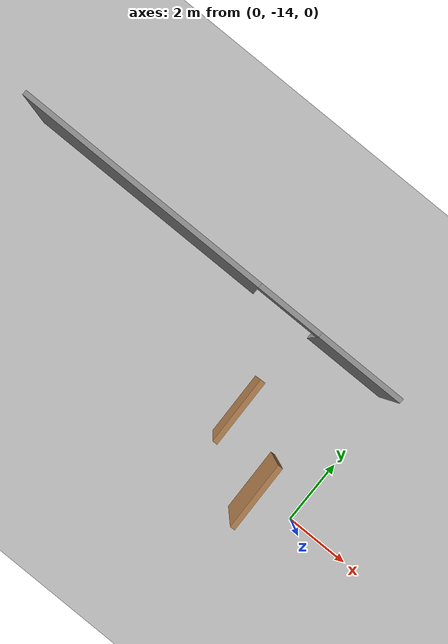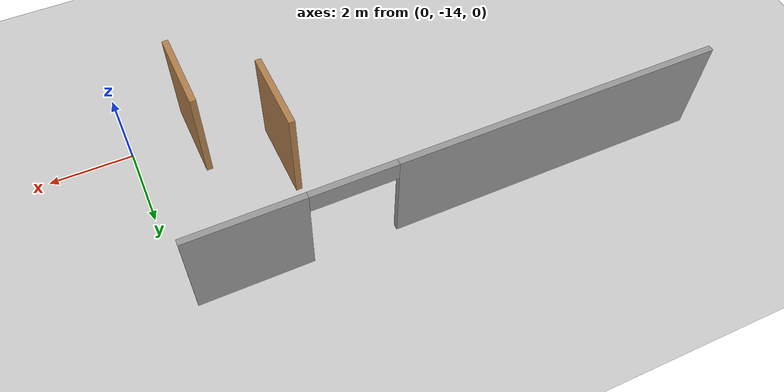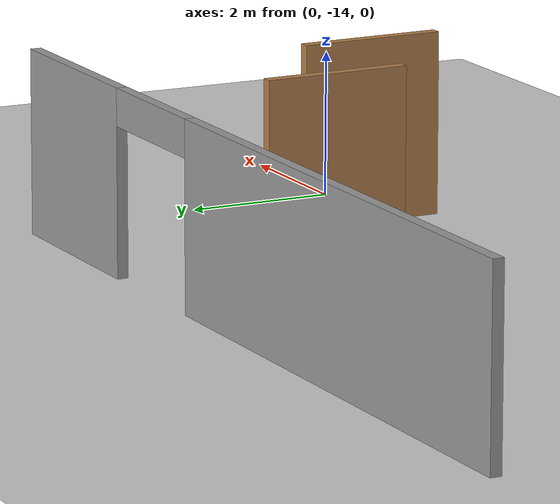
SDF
<sdf version="1.6">
 <world name="default">
  <model name="ground_plane">
   <static>1</static>
   <link name="link">
    <collision name="collision">
     <geometry><plane><normal>0 0 1</normal><size>100 100</size></plane></geometry>
     <surface><friction><ode><mu>100</mu><mu2>50</mu2></ode></friction></surface>
    </collision>
    <visual name="visual">
     <cast_shadows>0</cast_shadows>
     <geometry><plane><normal>0 0 1</normal><size>100 100</size></plane></geometry>
     <material>
      <script><uri>file://media/materials/scripts/gazebo.material</uri><name>Gazebo/Grey</name></script>
     </material>
    </visual>
   </link>
  </model>
  <model name="rbcp_final4">
   <link name="Wall_51">
    <pose>-11.425 -5.90578 2.5 0 -0 0</pose>
    <visual name="Wall_51_Visual_0">
     <pose>-2.3439 0 1.25 0 -0 0</pose>
     <geometry><box><size>7.81221 0.15 2.5</size></box></geometry>
     <material>
      <script><uri>file://media/materials/scripts/gazebo.material</uri><name>Gazebo/Grey</name></script>
      <ambient>1 1 1 1</ambient>
      <diffuse>0.7 0.7 0.7 1</diffuse>
      <specular>0.01 0.01 0.01 1</specular>
      <emissive>0 0 0 1</emissive>
     </material>
    </visual>
    <visual name="Wall_51_Visual_1">
     <pose>4.9061 0 1.25 0 -0 0</pose>
     <geometry><box><size>2.68779 0.15 2.5</size></box></geometry>
     <material>
      <script><uri>file://media/materials/scripts/gazebo.material</uri><name>Gazebo/Grey</name></script>
      <ambient>1 1 1 1</ambient>
      <diffuse>0.7 0.7 0.7 1</diffuse>
      <specular>0.01 0.01 0.01 1</specular>
      <emissive>0 0 0 1</emissive>
     </material>
    </visual>
    <visual name="Wall_51_Visual_2">
     <pose>2.56221 0 2.25 0 -0 0</pose>
     <geometry><box><size>2 0.15 0.5</size></box></geometry>
     <material>
      <script><uri>file://media/materials/scripts/gazebo.material</uri><name>Gazebo/Grey</name></script>
      <ambient>1 1 1 1</ambient>
      <diffuse>0.7 0.7 0.7 1</diffuse>
      <specular>0.01 0.01 0.01 1</specular>
      <emissive>0 0 0 1</emissive>
     </material>
    </visual>
    <collision name="Wall_51_Collision_0">
     <pose>-2.3439 0 1.25 0 -0 0</pose>
     <geometry><box><size>7.81221 0.15 2.5</size></box></geometry>
     <surface>
      <friction>
       <ode><mu>1</mu><mu2>1</mu2><fdir1>0 0 0</fdir1><slip1>0</slip1><slip2>0</slip2></ode>
       <torsional>
        <coefficient>1</coefficient>
        <patch_radius>0</patch_radius>
        <surface_radius>0</surface_radius>
        <use_patch_radius>1</use_patch_radius>
        <ode><slip>0</slip></ode>
       </torsional>
      </friction>
      <bounce><restitution_coefficient>0</restitution_coefficient><threshold>1e+06</threshold></bounce>
      <contact>
       <collide_without_contact>0</collide_without_contact>
       <collide_without_contact_bitmask>1</collide_without_contact_bitmask>
       <collide_bitmask>1</collide_bitmask>
       <ode>
        <soft_cfm>0</soft_cfm>
        <soft_erp>0.2</soft_erp>
        <kp>1e+13</kp>
        <kd>1</kd>
        <max_vel>0.01</max_vel>
        <min_depth>0</min_depth>
       </ode>
       <bullet>
        <split_impulse>1</split_impulse>
        <split_impulse_penetration_threshold>-0.01</split_impulse_penetration_threshold>
        <soft_cfm>0</soft_cfm>
        <soft_erp>0.2</soft_erp>
        <kp>1e+13</kp>
        <kd>1</kd>
       </bullet>
      </contact>
     </surface>
    </collision>
    <collision name="Wall_51_Collision_1">
     <pose>4.9061 0 1.25 0 -0 0</pose>
     <geometry><box><size>2.68779 0.15 2.5</size></box></geometry>
     <surface>
      <friction>
       <ode><mu>1</mu><mu2>1</mu2><fdir1>0 0 0</fdir1><slip1>0</slip1><slip2>0</slip2></ode>
       <torsional>
        <coefficient>1</coefficient>
        <patch_radius>0</patch_radius>
        <surface_radius>0</surface_radius>
        <use_patch_radius>1</use_patch_radius>
        <ode><slip>0</slip></ode>
       </torsional>
      </friction>
      <bounce><restitution_coefficient>0</restitution_coefficient><threshold>1e+06</threshold></bounce>
      <contact>
       <collide_without_contact>0</collide_without_contact>
       <collide_without_contact_bitmask>1</collide_without_contact_bitmask>
       <collide_bitmask>1</collide_bitmask>
       <ode>
        <soft_cfm>0</soft_cfm>
        <soft_erp>0.2</soft_erp>
        <kp>1e+13</kp>
        <kd>1</kd>
        <max_vel>0.01</max_vel>
        <min_depth>0</min_depth>
       </ode>
       <bullet>
        <split_impulse>1</split_impulse>
        <split_impulse_penetration_threshold>-0.01</split_impulse_penetration_threshold>
        <soft_cfm>0</soft_cfm>
        <soft_erp>0.2</soft_erp>
        <kp>1e+13</kp>
        <kd>1</kd>
       </bullet>
      </contact>
     </surface>
    </collision>
    <collision name="Wall_51_Collision_2">
     <pose>2.56221 0 2.25 0 -0 0</pose>
     <geometry><box><size>2 0.15 0.5</size></box></geometry>
     <surface>
      <friction>
       <ode><mu>1</mu><mu2>1</mu2><fdir1>0 0 0</fdir1><slip1>0</slip1><slip2>0</slip2></ode>
       <torsional>
        <coefficient>1</coefficient>
        <patch_radius>0</patch_radius>
        <surface_radius>0</surface_radius>
        <use_patch_radius>1</use_patch_radius>
        <ode><slip>0</slip></ode>
       </torsional>
      </friction>
      <bounce><restitution_coefficient>0</restitution_coefficient><threshold>1e+06</threshold></bounce>
      <contact>
       <collide_without_contact>0</collide_without_contact>
       <collide_without_contact_bitmask>1</collide_without_contact_bitmask>
       <collide_bitmask>1</collide_bitmask>
       <ode>
        <soft_cfm>0</soft_cfm>
        <soft_erp>0.2</soft_erp>
        <kp>1e+13</kp>
        <kd>1</kd>
        <max_vel>0.01</max_vel>
        <min_depth>0</min_depth>
       </ode>
       <bullet>
        <split_impulse>1</split_impulse>
        <split_impulse_penetration_threshold>-0.01</split_impulse_penetration_threshold>
        <soft_cfm>0</soft_cfm>
        <soft_erp>0.2</soft_erp>
        <kp>1e+13</kp>
        <kd>1</kd>
       </bullet>
      </contact>
     </surface>
    </collision>
   </link>
   <static>1</static>
   <pose>4.93057 -3.68418 -2.5 0 -0 0</pose>
  </model>
  <model name="tr_maze_lay_1_clone_5">
   <pose>-3.29896 -12.444 0 0 0 -1.549</pose>
   <link name="Wall_21">
    <collision name="Wall_21_Collision">
     <geometry><box><size>2 0.15 2.5</size></box></geometry>
     <pose>0 0 1.25 0 -0 0</pose>
    </collision>
    <visual name="Wall_21_Visual">
     <pose>0 0 1.25 0 -0 0</pose>
     <geometry><box><size>2 0.15 2.5</size></box></geometry>
     <material>
      <script><uri>file://media/materials/scripts/gazebo.material</uri><name>Gazebo/Wood</name></script>
      <ambient>1 1 1 1</ambient>
     </material>
    </visual>
    <pose>0 0 0 0 -0 3.14159</pose>
   </link>
   <static>1</static>
  </model>
  <model name="tr_maze_lay_1_clone_6">
   <pose>-1.56329 -13.8561 0 0 0 -1.549</pose>
   <link name="Wall_21">
    <collision name="Wall_21_Collision">
     <geometry><box><size>2 0.15 2.5</size></box></geometry>
     <pose>0 0 1.25 0 -0 0</pose>
    </collision>
    <visual name="Wall_21_Visual">
     <pose>0 0 1.25 0 -0 0</pose>
     <geometry><box><size>2 0.15 2.5</size></box></geometry>
     <material>
      <script><uri>file://media/materials/scripts/gazebo.material</uri><name>Gazebo/Wood</name></script>
      <ambient>1 1 1 1</ambient>
     </material>
    </visual>
    <pose>0 0 0 0 -0 3.14159</pose>
   </link>
   <static>1</static>
  </model>
 </world>
</sdf>
